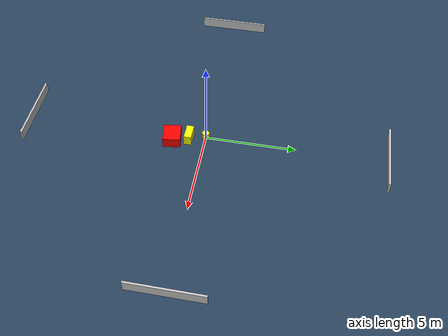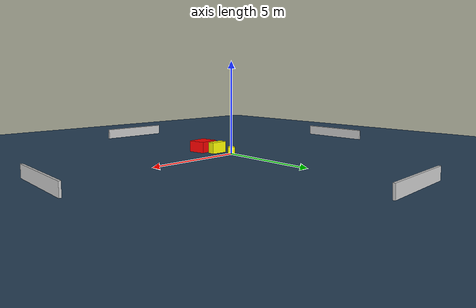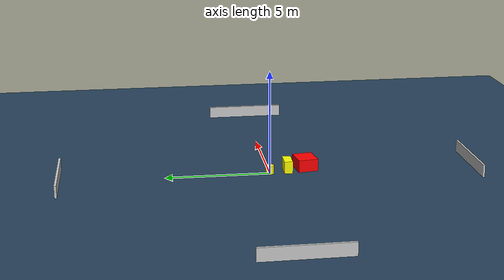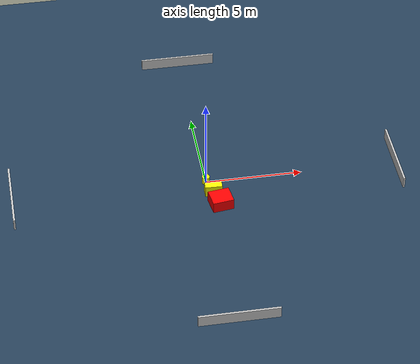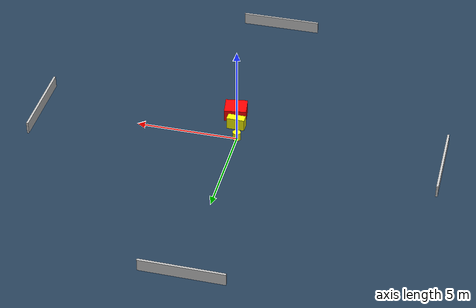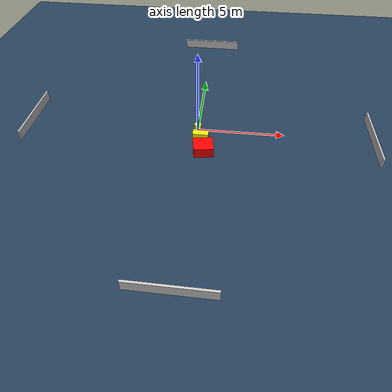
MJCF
<?xml version="1.0" ?>
<mujoco model="generated_environment">
  <option timestep="0.01" integrator="RK4" cone="elliptic"/>
  <default>
    <geom density="1"/>
  </default>
  <asset>
    <texture builtin="gradient" height="3072" name="skybox" rgb1="0.3 0.5 0.7" rgb2="0 0 0" type="skybox" width="512"/>
    <texture builtin="checker" height="300" name="groundplane" rgb1="0.2 0.3 0.4" rgb2="0.1 0.2 0.3" type="2d" width="300"/>
    <material name="groundplane" reflectance="0.2" texrepeat="5 5" texture="groundplane"/>
  </asset>
  <worldbody>
    <light dir="0 0 -1" directional="true" pos="0 0 1.5"/>
    <geom condim="3" friction="0.5 0.005 0.001" material="groundplane" name="floor" pos="0 0 0" size="0 0 0.05" type="plane"/>
    <body name="walls">
      <geom name="wall_1" condim="4" pos="-10.0 0.0 0.3" rgba="0.800000011920929 0.800000011920929 0.800000011920929 1.0" size="0.05 2.0 0.3" type="box"/>
      <geom name="wall_2" condim="4" pos="10.0 0.0 0.3" rgba="0.800000011920929 0.800000011920929 0.800000011920929 1.0" size="0.05 2.0 0.3" type="box"/>
      <geom name="wall_3" condim="4" pos="0.0 -10.0 0.3" rgba="0.800000011920929 0.800000011920929 0.800000011920929 1.0" size="2.0 0.05 0.3" type="box"/>
      <geom name="wall_4" condim="4" pos="0.0 10.0 0.3" rgba="0.800000011920929 0.800000011920929 0.800000011920929 1.0" size="2.0 0.05 0.3" type="box"/>
    </body>
    <body name="robot">
      <joint name="joint_x" type="slide" pos="0 0 0" axis="1 0 0"/>
      <joint name="joint_y" type="slide" pos="0 0 0" axis="0 1 0"/>
      <geom name="robot" type="cylinder" pos="0.0 0.0 0.2" size="0.2 0.2 0.0" mass="5.0" friction="1.0 0.005 0.0001" condim="4" rgba="1.0 1.0 0.0 1.0"/>
    </body>
    <body name="obstacle_1_movable">
      <geom name="obstacle_1_movable" condim="4" pos="0.24797190800991348 -0.8978129808808342 0.3" euler="0 0 268.9663061985599" friction="0.0 0.005 0.001" rgba="1.0 1.0 0.0 1.0" size="0.20272343247936858 0.44039043503789027 0.3" type="box" mass="0.1"/>
      <joint type="free"/>
    </body>
    <body name="obstacle_2_static">
      <geom name="obstacle_2_static" condim="4" pos="0.48573234702714596 -1.8106265379259636 0.3" euler="0 0 278.2974820227046" friction="0.0 0.005 0.001" rgba="1.0 0.0 0.0 1.0" size="0.483200195347697 0.546089019128682 0.3" type="box"/>
    </body>
  </worldbody>
  <actuator>
    <motor name="actuator_x" joint="joint_x" gear="1" ctrlrange="-1 1"/>
    <motor name="actuator_y" joint="joint_y" gear="1" ctrlrange="-1 1"/>
  </actuator>
</mujoco>
